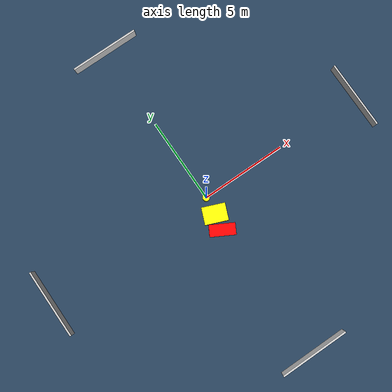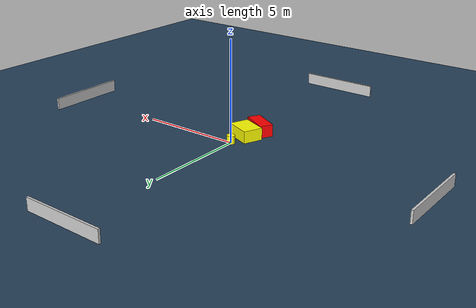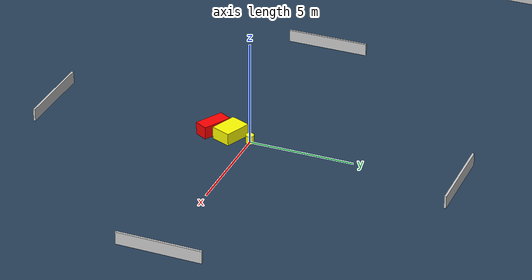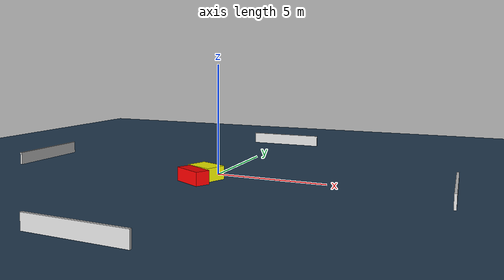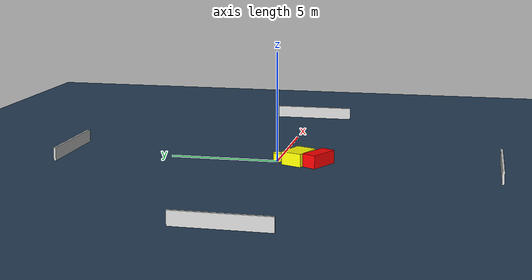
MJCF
<?xml version="1.0" ?>
<mujoco model="generated_environment">
  <option timestep="0.01" integrator="RK4" cone="elliptic"/>
  <default>
    <geom density="1"/>
  </default>
  <asset>
    <texture builtin="gradient" height="3072" name="skybox" rgb1="0.3 0.5 0.7" rgb2="0 0 0" type="skybox" width="512"/>
    <texture builtin="checker" height="300" name="groundplane" rgb1="0.2 0.3 0.4" rgb2="0.1 0.2 0.3" type="2d" width="300"/>
    <material name="groundplane" reflectance="0.2" texrepeat="5 5" texture="groundplane"/>
  </asset>
  <worldbody>
    <light dir="0 0 -1" directional="true" pos="0 0 1.5"/>
    <geom condim="3" friction="0.5 0.005 0.001" material="groundplane" name="floor" pos="0 0 0" size="0 0 0.05" type="plane"/>
    <body name="walls">
      <geom name="wall_1" condim="4" pos="-10.0 0.0 0.3" rgba="0.800000011920929 0.800000011920929 0.800000011920929 1.0" size="0.05 2.0 0.3" type="box"/>
      <geom name="wall_2" condim="4" pos="10.0 0.0 0.3" rgba="0.800000011920929 0.800000011920929 0.800000011920929 1.0" size="0.05 2.0 0.3" type="box"/>
      <geom name="wall_3" condim="4" pos="0.0 -10.0 0.3" rgba="0.800000011920929 0.800000011920929 0.800000011920929 1.0" size="2.0 0.05 0.3" type="box"/>
      <geom name="wall_4" condim="4" pos="0.0 10.0 0.3" rgba="0.800000011920929 0.800000011920929 0.800000011920929 1.0" size="2.0 0.05 0.3" type="box"/>
    </body>
    <body name="robot">
      <joint name="joint_x" type="slide" pos="0 0 0" axis="1 0 0"/>
      <joint name="joint_y" type="slide" pos="0 0 0" axis="0 1 0"/>
      <geom name="robot" type="cylinder" pos="0.0 0.0 0.2" size="0.2 0.2 0.0" mass="5.0" friction="1.0 0.005 0.0001" condim="4" rgba="1.0 1.0 0.0 1.0"/>
    </body>
    <body name="obstacle_1_movable">
      <geom name="obstacle_1_movable" condim="4" pos="-0.12274191423898989 -1.0108932868098948 0.3" euler="0 0 157.97742747537458" friction="0.0 0.005 0.001" rgba="1.0 1.0 0.0 1.0" size="0.6595049955969825 0.4864318434466267 0.3" type="box" mass="0.1"/>
      <joint type="free"/>
    </body>
    <body name="obstacle_2_static">
      <geom name="obstacle_2_static" condim="4" pos="-0.2796301096642515 -1.9430536709596393 0.3" euler="0 0 331.1778137326039" friction="0.0 0.005 0.001" rgba="1.0 0.0 0.0 1.0" size="0.7229641444395234 0.33200557717069246 0.3" type="box"/>
    </body>
  </worldbody>
  <actuator>
    <motor name="actuator_x" joint="joint_x" gear="1" ctrlrange="-1 1"/>
    <motor name="actuator_y" joint="joint_y" gear="1" ctrlrange="-1 1"/>
  </actuator>
</mujoco>
